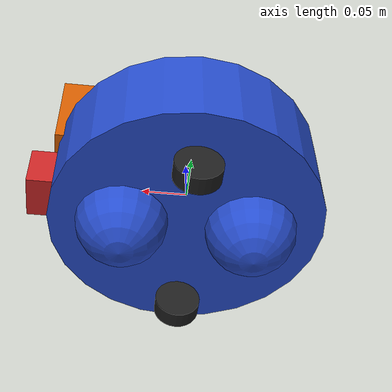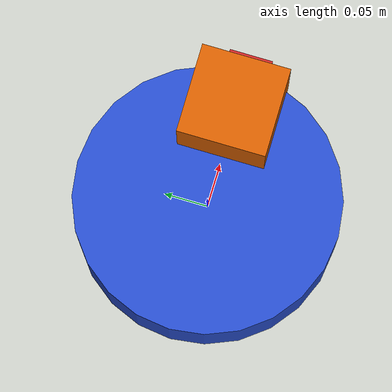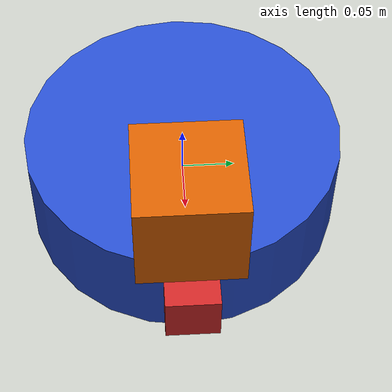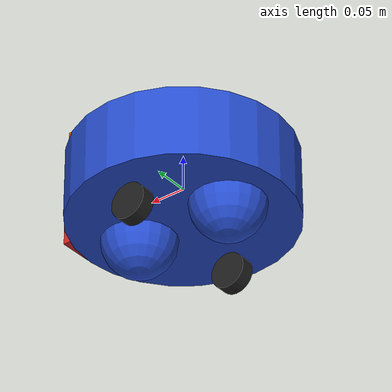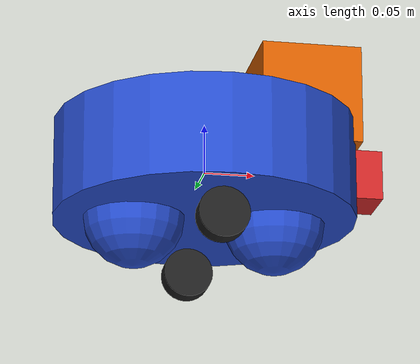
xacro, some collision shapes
<?xml version='1.0'?>

<robot name="my_robot" xmlns:xacro="http://www.ros.org/wiki/xacro">

<xacro:include filename="$(find my_robot)/urdf/my_robot.gazebo" />

  <link name="robot_footprint"></link>

  <joint name="robot_footprint_joint" type="fixed">
    <origin xyz="0 0 0" rpy="0 0 0" />
    <parent link="robot_footprint"/>
    <child link="chassis" />
  </joint>

  <!-- Chassis link -->

  <link name='chassis'>
    <pose>0 0 0.1 0 0 0</pose>
    <inertial>
      <mass value="15.0"/>
      <origin xyz="0.0 0 0" rpy=" 0 0 0"/>
      <inertia
          ixx="0.1" ixy="0" ixz="0"
          iyy="0.1" iyz="0"
          izz="0.1"
      />
    </inertial>
    <collision name='collision'>
      <origin xyz="0 0 0" rpy=" 0 0 0"/>
      <geometry>
        <cylinder radius="0.15" length="0.09"/>
      </geometry>
    </collision>
    <visual name='chassis_visual'>
      <origin xyz="0 0 0" rpy=" 0 0 0"/>
      <geometry>
        <cylinder radius="0.15" length="0.1"/>
      </geometry>
    </visual>

    <!-- Chassis back caster link -->

    <collision name='back_caster_collision'>
      <origin xyz="-0.07 0 -0.05" rpy=" 0 0 0"/>
      <geometry>
        <sphere radius="0.0499"/>
      </geometry>
    </collision>
    <visual name='back_caster_visual'>
      <origin xyz="-0.07 0 -0.05" rpy=" 0 0 0"/>
      <geometry>
        <sphere radius="0.05"/>
      </geometry>
    </visual>

    <!-- Chassis front caster link -->

    <collision name='front_caster_collision'>
      <origin xyz="0.07 0 -0.05" rpy=" 0 0 0"/>
      <geometry>
        <sphere radius="0.0499"/>
      </geometry>
    </collision>
    <visual name='front_caster_visual'>
      <origin xyz="0.07 0 -0.05" rpy=" 0 0 0"/>
      <geometry>
        <sphere radius="0.05"/>
      </geometry>
    </visual>
  </link>

  <!-- Left wheel link -->

  <link name='left_wheel'>
    <pose> 0 0 0 0 0 0</pose>
    <collision name='left_wheel_collision'>
      <origin xyz="0 0 0" rpy="0 1.5707 1.5707"/>
      <geometry>
        <cylinder radius="0.025" length="0.02"/>
      </geometry>
    </collision>
    <inertial>
      <mass value="0.5"/>
      <origin xyz="0 0 0" rpy="0 1.5707 1.5707"/>
      <inertia
          ixx="0.01" ixy="0" ixz="0"
          iyy="0.01" iyz="0"
          izz="0.01"
      />
    </inertial>
    <visual name='right_wheel_visual'>
      <origin xyz="0 0 0" rpy=" 0 1.5707 1.5707"/>
      <geometry>
        <cylinder radius="0.025" length="0.02"/>
      </geometry>
    </visual>
  </link>

  <!-- Right wheel link -->

  <link name='right_wheel'>
    <pose> 0 0 0 0 0 0</pose>
    <collision name='right_wheel_collision'>
      <origin xyz="0 0 0" rpy="0 1.5707 1.5707"/>
      <geometry>
        <cylinder radius="0.025" length="0.02"/>
      </geometry>
    </collision>
    <inertial>
      <mass value="0.5"/>
      <origin xyz="0 0 0" rpy="0 1.5707 1.5707"/>
      <inertia
          ixx="0.01" ixy="0" ixz="0"
          iyy="0.01" iyz="0"
          izz="0.01"
      />
    </inertial>
    <visual name='right_wheel_visual'>
      <origin xyz="0 0 0" rpy=" 0 1.5707 1.5707"/>
      <geometry>
        <cylinder radius="0.025" length="0.02"/>
      </geometry>
    </visual>
  </link>

  <joint type="continuous" name="left_wheel_hinge">
    <origin xyz="0 0.1 -0.075" rpy="0 0 0"/>
    <child link="left_wheel"/>
    <parent link="chassis"/>
    <axis xyz="0 1 0" rpy="0 0 0"/>
    <limit effort="10000" velocity="1000"/>
    <dynamics damping="1.0" friction="1.0"/>
  </joint>
  <joint type="continuous" name="right_wheel_hinge">
    <origin xyz="0 -0.1 -0.075" rpy="0 0 0"/>
    <child link="right_wheel"/>
    <parent link="chassis"/>
    <axis xyz="0 1 0" rpy="0 0 0"/>
    <limit effort="10000" velocity="1000"/>
    <dynamics damping="1.0" friction="1.0"/>
  </joint>

  <!-- Camera link -->

  <link name='camera'>
    <pose>0 0 0.1 0 0 0</pose>
    <collision name='camera_collision'>
      <origin xyz="0 0 0" rpy=" 0 0 0"/>
      <geometry>
        <box size=".05 .05 .05"/>
      </geometry>
    </collision>
    <inertial>
      <mass value="0.1"/>
      <origin xyz="0 0 0" rpy=" 0 0 0"/>
      <box_inertia m="0.1" x="0.05" y="0.05" z="0.05"/>
      <inertia
          ixx="1e-6" ixy="0" ixz="0"
          iyy="1e-6" iyz="0"
          izz="1e-6"
      />
    </inertial>
    <visual name='camera_visual'>
      <origin xyz="0 0 0" rpy="0 0 0"/>
      <geometry>
        <box size=".05 .05 .05"/>
      </geometry>
    </visual>
  </link>

  <joint type="fixed" name="camera_joint">
    <origin xyz="0.15 0 0" rpy="0 0 0"/>
    <child link="camera"/>
    <parent link="chassis"/>
    <axis xyz="0 1 0" rpy="0 0 0"/>
  </joint>

  <!-- Hokuyo link -->

  <link name='hokuyo'>
    <pose>0 0 0.1 0 0 0</pose>
    <collision name='hokuyo_collision'>
      <origin xyz="0 0 0" rpy=" 0 0 0"/>
      <geometry>
        <box size="0.1 0.1 0.1"/>
      </geometry>
    </collision>
    <inertial>
      <mass value="1e-5"/>
      <origin xyz="0 0 0" rpy=" 0 0 0"/>
      <inertia
          ixx="1e-6" ixy="0" ixz="0"
          iyy="1e-6" iyz="0"
          izz="1e-6"
      />
    </inertial>
    <visual name='hokuyo_visual'>
      <origin xyz="0 0 0" rpy="0 0 0"/>
      <geometry>
        <mesh filename="package://my_robot/meshes/hokuyo.dae"/>
      </geometry>
    </visual>
  </link>

  <joint type="fixed" name="hokuyo_joint">
    <origin xyz="0.1 0 0.075" rpy="0 0 0"/>
    <child link="hokuyo"/>
    <parent link="chassis"/>
    <axis xyz="0 1 0" rpy="0 0 0"/>
  </joint>

  <!-- Robot material/colour -->

  <gazebo reference="camera">
    <material>Gazebo/Red</material>
  </gazebo>
  <gazebo reference="chassis">
    <material>Gazebo/Blue</material>
  </gazebo>
  <gazebo reference="left_wheel">
    <material>Gazebo/Black</material>
  </gazebo>
  <gazebo reference="right_wheel">
    <material>Gazebo/Black</material>
  </gazebo>

</robot>
